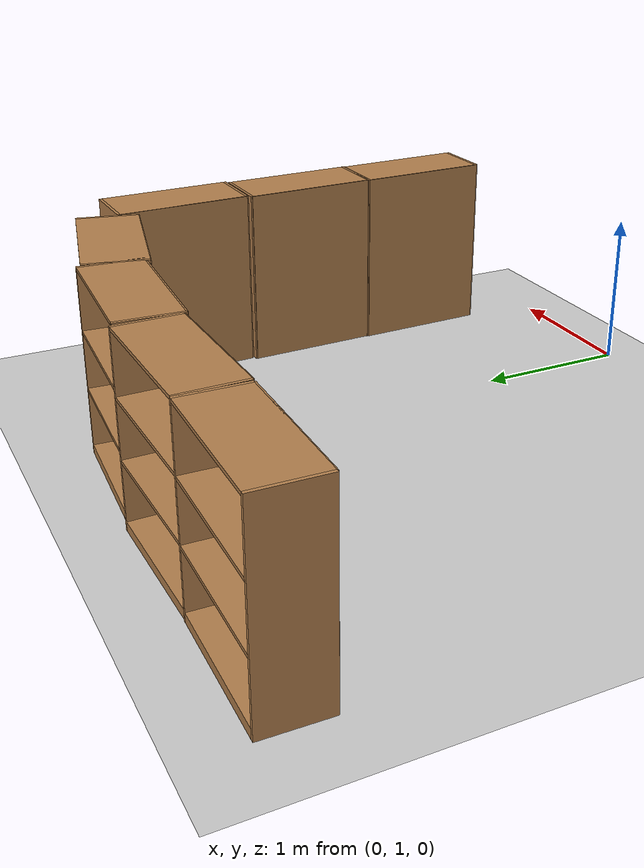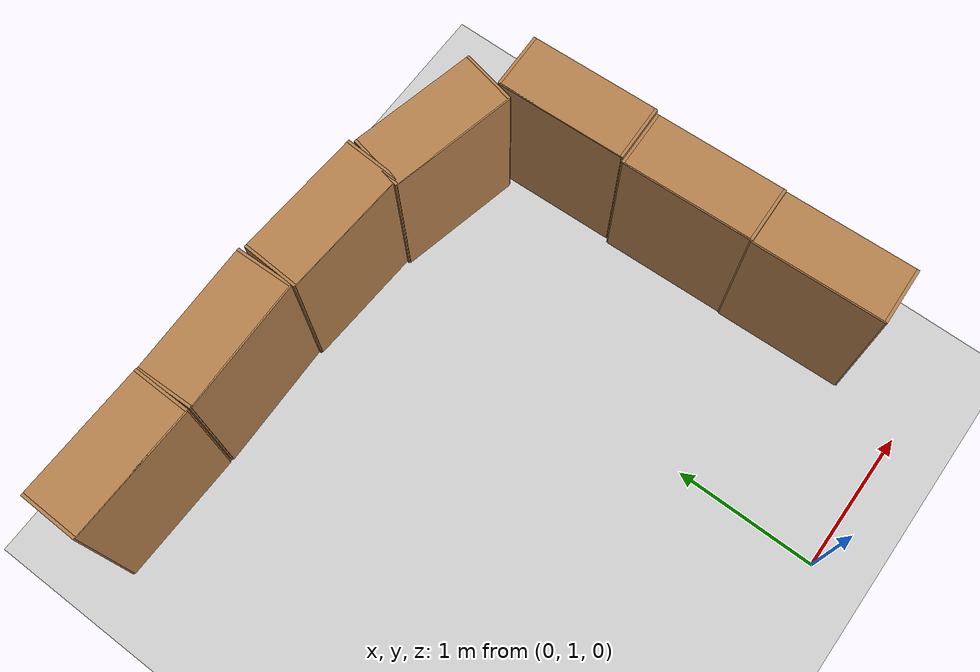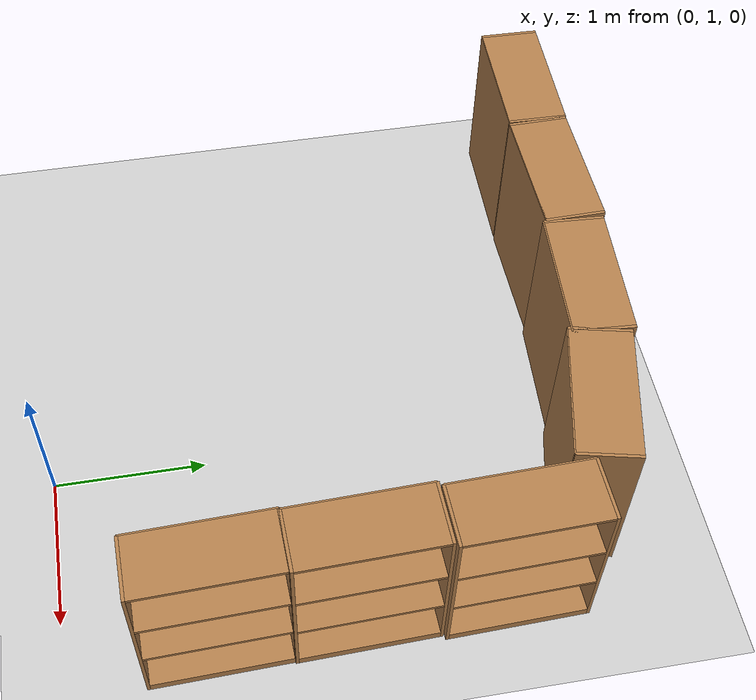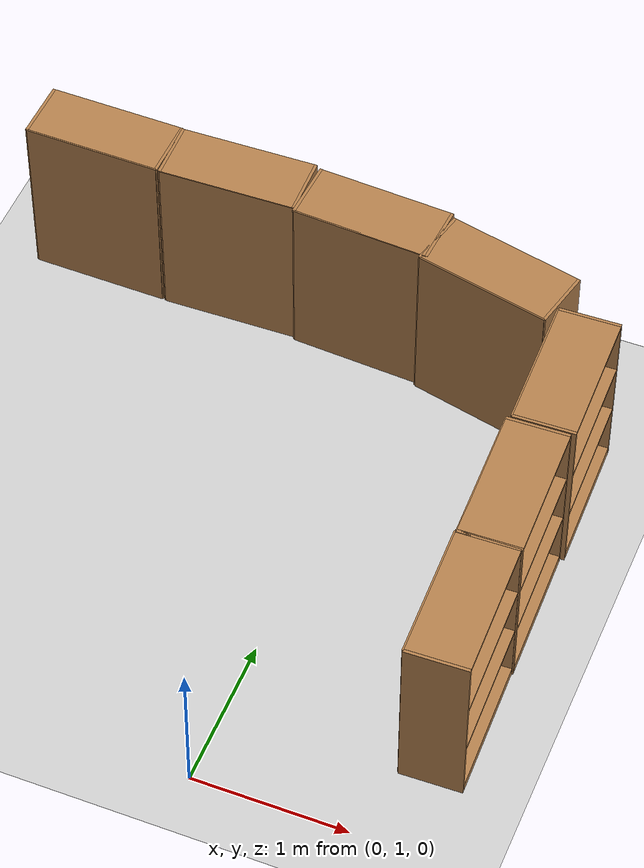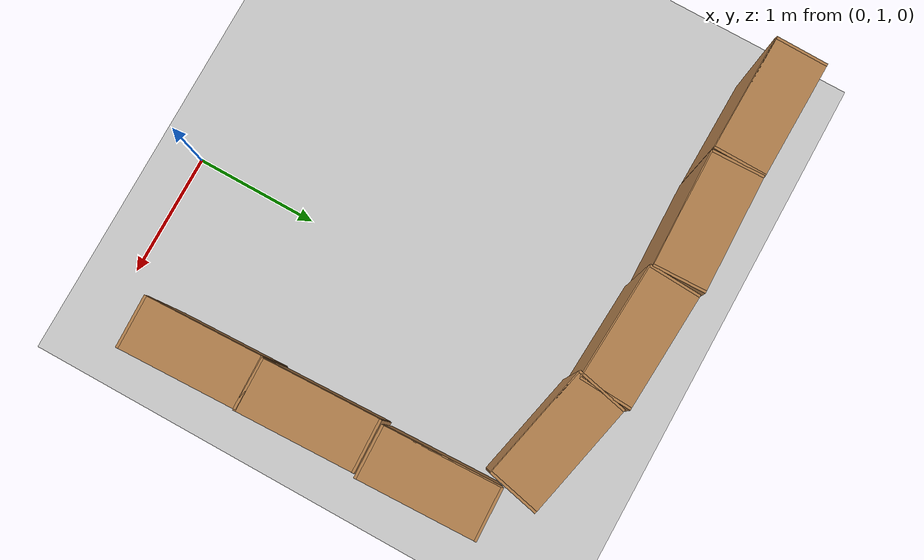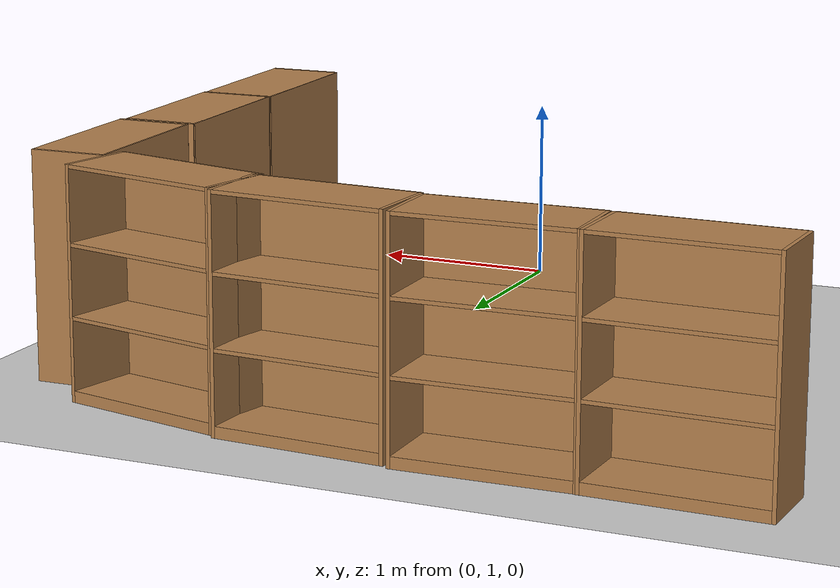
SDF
<sdf version="1.4">
 <world name="default">
  <model name="ground_plane">
   <static>1</static>
   <link name="link">
    <collision name="collision">
     <geometry><plane><normal>0 0 1</normal><size>100 100</size></plane></geometry>
     <surface><friction><ode><mu>100</mu><mu2>50</mu2></ode></friction></surface>
    </collision>
    <visual name="visual">
     <cast_shadows>0</cast_shadows>
     <geometry><plane><normal>0 0 1</normal><size>100 100</size></plane></geometry>
     <material>
      <script><uri>file://media/materials/scripts/gazebo.material</uri><name>Gazebo/Grey</name></script>
     </material>
    </visual>
    <velocity_decay><linear>0</linear><angular>0</angular></velocity_decay>
   </link>
  </model>
  <model name="bookshelf_6">
   <static>1</static>
   <link name="link">
    <inertial><mass>1</mass></inertial>
    <collision name="back">
     <pose>0 0.005 0.6 0 -0 0</pose>
     <geometry><box><size>0.9 0.01 1.2</size></box></geometry>
    </collision>
    <visual name="visual1">
     <pose>0 0.005 0.6 0 -0 0</pose>
     <geometry><box><size>0.9 0.01 1.2</size></box></geometry>
     <material>
      <script><uri>file://media/materials/scripts/gazebo.material</uri><name>Gazebo/Wood</name></script>
     </material>
    </visual>
    <collision name="left_side">
     <pose>0.45 -0.195 0.6 0 -0 0</pose>
     <geometry><box><size>0.02 0.4 1.2</size></box></geometry>
    </collision>
    <visual name="visual2">
     <pose>0.45 -0.195 0.6 0 -0 0</pose>
     <geometry><box><size>0.02 0.4 1.2</size></box></geometry>
     <material>
      <script><uri>file://media/materials/scripts/gazebo.material</uri><name>Gazebo/Wood</name></script>
     </material>
    </visual>
    <collision name="right_side">
     <pose>-0.45 -0.195 0.6 0 -0 0</pose>
     <geometry><box><size>0.02 0.4 1.2</size></box></geometry>
    </collision>
    <visual name="visual3">
     <pose>-0.45 -0.195 0.6 0 -0 0</pose>
     <geometry><box><size>0.02 0.4 1.2</size></box></geometry>
     <material>
      <script><uri>file://media/materials/scripts/gazebo.material</uri><name>Gazebo/Wood</name></script>
     </material>
    </visual>
    <collision name="bottom">
     <pose>0 -0.195 0.03 0 -0 0</pose>
     <geometry><box><size>0.88 0.4 0.06</size></box></geometry>
    </collision>
    <visual name="visual4">
     <pose>0 -0.195 0.03 0 -0 0</pose>
     <geometry><box><size>0.88 0.4 0.06</size></box></geometry>
     <material>
      <script><uri>file://media/materials/scripts/gazebo.material</uri><name>Gazebo/Wood</name></script>
     </material>
    </visual>
    <collision name="top">
     <pose>0 -0.195 1.19 0 -0 0</pose>
     <geometry><box><size>0.88 0.4 0.02</size></box></geometry>
    </collision>
    <visual name="visual5">
     <pose>0 -0.195 1.19 0 -0 0</pose>
     <geometry><box><size>0.88 0.4 0.02</size></box></geometry>
     <material>
      <script><uri>file://media/materials/scripts/gazebo.material</uri><name>Gazebo/Wood</name></script>
     </material>
    </visual>
    <collision name="low_shelf">
     <pose>0 -0.195 0.43 0 -0 0</pose>
     <geometry><box><size>0.88 0.4 0.02</size></box></geometry>
    </collision>
    <visual name="visual6">
     <pose>0 -0.195 0.43 0 -0 0</pose>
     <geometry><box><size>0.88 0.4 0.02</size></box></geometry>
     <material>
      <script><uri>file://media/materials/scripts/gazebo.material</uri><name>Gazebo/Wood</name></script>
     </material>
    </visual>
    <collision name="high_shelf">
     <pose>0 -0.195 0.8 0 -0 0</pose>
     <geometry><box><size>0.88 0.4 0.02</size></box></geometry>
    </collision>
    <visual name="visual7">
     <pose>0 -0.195 0.8 0 -0 0</pose>
     <geometry><box><size>0.88 0.4 0.02</size></box></geometry>
     <material>
      <script><uri>file://media/materials/scripts/gazebo.material</uri><name>Gazebo/Wood</name></script>
     </material>
    </visual>
    <velocity_decay><linear>0</linear><angular>0</angular></velocity_decay>
   </link>
   <pose>-2.11756 4.40334 0 0 -0 3.12318</pose>
  </model>
  <model name="bookshelf_7">
   <static>1</static>
   <link name="link">
    <inertial><mass>1</mass></inertial>
    <collision name="back">
     <pose>0 0.005 0.6 0 -0 0</pose>
     <geometry><box><size>0.9 0.01 1.2</size></box></geometry>
    </collision>
    <visual name="visual1">
     <pose>0 0.005 0.6 0 -0 0</pose>
     <geometry><box><size>0.9 0.01 1.2</size></box></geometry>
     <material>
      <script><uri>file://media/materials/scripts/gazebo.material</uri><name>Gazebo/Wood</name></script>
     </material>
    </visual>
    <collision name="left_side">
     <pose>0.45 -0.195 0.6 0 -0 0</pose>
     <geometry><box><size>0.02 0.4 1.2</size></box></geometry>
    </collision>
    <visual name="visual2">
     <pose>0.45 -0.195 0.6 0 -0 0</pose>
     <geometry><box><size>0.02 0.4 1.2</size></box></geometry>
     <material>
      <script><uri>file://media/materials/scripts/gazebo.material</uri><name>Gazebo/Wood</name></script>
     </material>
    </visual>
    <collision name="right_side">
     <pose>-0.45 -0.195 0.6 0 -0 0</pose>
     <geometry><box><size>0.02 0.4 1.2</size></box></geometry>
    </collision>
    <visual name="visual3">
     <pose>-0.45 -0.195 0.6 0 -0 0</pose>
     <geometry><box><size>0.02 0.4 1.2</size></box></geometry>
     <material>
      <script><uri>file://media/materials/scripts/gazebo.material</uri><name>Gazebo/Wood</name></script>
     </material>
    </visual>
    <collision name="bottom">
     <pose>0 -0.195 0.03 0 -0 0</pose>
     <geometry><box><size>0.88 0.4 0.06</size></box></geometry>
    </collision>
    <visual name="visual4">
     <pose>0 -0.195 0.03 0 -0 0</pose>
     <geometry><box><size>0.88 0.4 0.06</size></box></geometry>
     <material>
      <script><uri>file://media/materials/scripts/gazebo.material</uri><name>Gazebo/Wood</name></script>
     </material>
    </visual>
    <collision name="top">
     <pose>0 -0.195 1.19 0 -0 0</pose>
     <geometry><box><size>0.88 0.4 0.02</size></box></geometry>
    </collision>
    <visual name="visual5">
     <pose>0 -0.195 1.19 0 -0 0</pose>
     <geometry><box><size>0.88 0.4 0.02</size></box></geometry>
     <material>
      <script><uri>file://media/materials/scripts/gazebo.material</uri><name>Gazebo/Wood</name></script>
     </material>
    </visual>
    <collision name="low_shelf">
     <pose>0 -0.195 0.43 0 -0 0</pose>
     <geometry><box><size>0.88 0.4 0.02</size></box></geometry>
    </collision>
    <visual name="visual6">
     <pose>0 -0.195 0.43 0 -0 0</pose>
     <geometry><box><size>0.88 0.4 0.02</size></box></geometry>
     <material>
      <script><uri>file://media/materials/scripts/gazebo.material</uri><name>Gazebo/Wood</name></script>
     </material>
    </visual>
    <collision name="high_shelf">
     <pose>0 -0.195 0.8 0 -0 0</pose>
     <geometry><box><size>0.88 0.4 0.02</size></box></geometry>
    </collision>
    <visual name="visual7">
     <pose>0 -0.195 0.8 0 -0 0</pose>
     <geometry><box><size>0.88 0.4 0.02</size></box></geometry>
     <material>
      <script><uri>file://media/materials/scripts/gazebo.material</uri><name>Gazebo/Wood</name></script>
     </material>
    </visual>
    <velocity_decay><linear>0</linear><angular>0</angular></velocity_decay>
   </link>
   <pose>-1.19087 4.40083 0 0 0 -3.12</pose>
  </model>
  <model name="bookshelf_8">
   <static>1</static>
   <link name="link">
    <inertial><mass>1</mass></inertial>
    <collision name="back">
     <pose>0 0.005 0.6 0 -0 0</pose>
     <geometry><box><size>0.9 0.01 1.2</size></box></geometry>
    </collision>
    <visual name="visual1">
     <pose>0 0.005 0.6 0 -0 0</pose>
     <geometry><box><size>0.9 0.01 1.2</size></box></geometry>
     <material>
      <script><uri>file://media/materials/scripts/gazebo.material</uri><name>Gazebo/Wood</name></script>
     </material>
    </visual>
    <collision name="left_side">
     <pose>0.45 -0.195 0.6 0 -0 0</pose>
     <geometry><box><size>0.02 0.4 1.2</size></box></geometry>
    </collision>
    <visual name="visual2">
     <pose>0.45 -0.195 0.6 0 -0 0</pose>
     <geometry><box><size>0.02 0.4 1.2</size></box></geometry>
     <material>
      <script><uri>file://media/materials/scripts/gazebo.material</uri><name>Gazebo/Wood</name></script>
     </material>
    </visual>
    <collision name="right_side">
     <pose>-0.45 -0.195 0.6 0 -0 0</pose>
     <geometry><box><size>0.02 0.4 1.2</size></box></geometry>
    </collision>
    <visual name="visual3">
     <pose>-0.45 -0.195 0.6 0 -0 0</pose>
     <geometry><box><size>0.02 0.4 1.2</size></box></geometry>
     <material>
      <script><uri>file://media/materials/scripts/gazebo.material</uri><name>Gazebo/Wood</name></script>
     </material>
    </visual>
    <collision name="bottom">
     <pose>0 -0.195 0.03 0 -0 0</pose>
     <geometry><box><size>0.88 0.4 0.06</size></box></geometry>
    </collision>
    <visual name="visual4">
     <pose>0 -0.195 0.03 0 -0 0</pose>
     <geometry><box><size>0.88 0.4 0.06</size></box></geometry>
     <material>
      <script><uri>file://media/materials/scripts/gazebo.material</uri><name>Gazebo/Wood</name></script>
     </material>
    </visual>
    <collision name="top">
     <pose>0 -0.195 1.19 0 -0 0</pose>
     <geometry><box><size>0.88 0.4 0.02</size></box></geometry>
    </collision>
    <visual name="visual5">
     <pose>0 -0.195 1.19 0 -0 0</pose>
     <geometry><box><size>0.88 0.4 0.02</size></box></geometry>
     <material>
      <script><uri>file://media/materials/scripts/gazebo.material</uri><name>Gazebo/Wood</name></script>
     </material>
    </visual>
    <collision name="low_shelf">
     <pose>0 -0.195 0.43 0 -0 0</pose>
     <geometry><box><size>0.88 0.4 0.02</size></box></geometry>
    </collision>
    <visual name="visual6">
     <pose>0 -0.195 0.43 0 -0 0</pose>
     <geometry><box><size>0.88 0.4 0.02</size></box></geometry>
     <material>
      <script><uri>file://media/materials/scripts/gazebo.material</uri><name>Gazebo/Wood</name></script>
     </material>
    </visual>
    <collision name="high_shelf">
     <pose>0 -0.195 0.8 0 -0 0</pose>
     <geometry><box><size>0.88 0.4 0.02</size></box></geometry>
    </collision>
    <visual name="visual7">
     <pose>0 -0.195 0.8 0 -0 0</pose>
     <geometry><box><size>0.88 0.4 0.02</size></box></geometry>
     <material>
      <script><uri>file://media/materials/scripts/gazebo.material</uri><name>Gazebo/Wood</name></script>
     </material>
    </visual>
    <velocity_decay><linear>0</linear><angular>0</angular></velocity_decay>
   </link>
   <pose>-0.279273 4.36332 0 0 -0 3.08318</pose>
  </model>
  <model name="bookshelf_11">
   <static>1</static>
   <link name="link">
    <inertial><mass>1</mass></inertial>
    <collision name="back">
     <pose>0 0.005 0.6 0 -0 0</pose>
     <geometry><box><size>0.9 0.01 1.2</size></box></geometry>
    </collision>
    <visual name="visual1">
     <pose>0 0.005 0.6 0 -0 0</pose>
     <geometry><box><size>0.9 0.01 1.2</size></box></geometry>
     <material>
      <script><uri>file://media/materials/scripts/gazebo.material</uri><name>Gazebo/Wood</name></script>
     </material>
    </visual>
    <collision name="left_side">
     <pose>0.45 -0.195 0.6 0 -0 0</pose>
     <geometry><box><size>0.02 0.4 1.2</size></box></geometry>
    </collision>
    <visual name="visual2">
     <pose>0.45 -0.195 0.6 0 -0 0</pose>
     <geometry><box><size>0.02 0.4 1.2</size></box></geometry>
     <material>
      <script><uri>file://media/materials/scripts/gazebo.material</uri><name>Gazebo/Wood</name></script>
     </material>
    </visual>
    <collision name="right_side">
     <pose>-0.45 -0.195 0.6 0 -0 0</pose>
     <geometry><box><size>0.02 0.4 1.2</size></box></geometry>
    </collision>
    <visual name="visual3">
     <pose>-0.45 -0.195 0.6 0 -0 0</pose>
     <geometry><box><size>0.02 0.4 1.2</size></box></geometry>
     <material>
      <script><uri>file://media/materials/scripts/gazebo.material</uri><name>Gazebo/Wood</name></script>
     </material>
    </visual>
    <collision name="bottom">
     <pose>0 -0.195 0.03 0 -0 0</pose>
     <geometry><box><size>0.88 0.4 0.06</size></box></geometry>
    </collision>
    <visual name="visual4">
     <pose>0 -0.195 0.03 0 -0 0</pose>
     <geometry><box><size>0.88 0.4 0.06</size></box></geometry>
     <material>
      <script><uri>file://media/materials/scripts/gazebo.material</uri><name>Gazebo/Wood</name></script>
     </material>
    </visual>
    <collision name="top">
     <pose>0 -0.195 1.19 0 -0 0</pose>
     <geometry><box><size>0.88 0.4 0.02</size></box></geometry>
    </collision>
    <visual name="visual5">
     <pose>0 -0.195 1.19 0 -0 0</pose>
     <geometry><box><size>0.88 0.4 0.02</size></box></geometry>
     <material>
      <script><uri>file://media/materials/scripts/gazebo.material</uri><name>Gazebo/Wood</name></script>
     </material>
    </visual>
    <collision name="low_shelf">
     <pose>0 -0.195 0.43 0 -0 0</pose>
     <geometry><box><size>0.88 0.4 0.02</size></box></geometry>
    </collision>
    <visual name="visual6">
     <pose>0 -0.195 0.43 0 -0 0</pose>
     <geometry><box><size>0.88 0.4 0.02</size></box></geometry>
     <material>
      <script><uri>file://media/materials/scripts/gazebo.material</uri><name>Gazebo/Wood</name></script>
     </material>
    </visual>
    <collision name="high_shelf">
     <pose>0 -0.195 0.8 0 -0 0</pose>
     <geometry><box><size>0.88 0.4 0.02</size></box></geometry>
    </collision>
    <visual name="visual7">
     <pose>0 -0.195 0.8 0 -0 0</pose>
     <geometry><box><size>0.88 0.4 0.02</size></box></geometry>
     <material>
      <script><uri>file://media/materials/scripts/gazebo.material</uri><name>Gazebo/Wood</name></script>
     </material>
    </visual>
    <velocity_decay><linear>0</linear><angular>0</angular></velocity_decay>
   </link>
   <pose>1.09969 1.94628 0 0 -0 1.6</pose>
  </model>
  <model name="bookshelf_12">
   <static>1</static>
   <link name="link">
    <inertial><mass>1</mass></inertial>
    <collision name="back">
     <pose>0 0.005 0.6 0 -0 0</pose>
     <geometry><box><size>0.9 0.01 1.2</size></box></geometry>
    </collision>
    <visual name="visual1">
     <pose>0 0.005 0.6 0 -0 0</pose>
     <geometry><box><size>0.9 0.01 1.2</size></box></geometry>
     <material>
      <script><uri>file://media/materials/scripts/gazebo.material</uri><name>Gazebo/Wood</name></script>
     </material>
    </visual>
    <collision name="left_side">
     <pose>0.45 -0.195 0.6 0 -0 0</pose>
     <geometry><box><size>0.02 0.4 1.2</size></box></geometry>
    </collision>
    <visual name="visual2">
     <pose>0.45 -0.195 0.6 0 -0 0</pose>
     <geometry><box><size>0.02 0.4 1.2</size></box></geometry>
     <material>
      <script><uri>file://media/materials/scripts/gazebo.material</uri><name>Gazebo/Wood</name></script>
     </material>
    </visual>
    <collision name="right_side">
     <pose>-0.45 -0.195 0.6 0 -0 0</pose>
     <geometry><box><size>0.02 0.4 1.2</size></box></geometry>
    </collision>
    <visual name="visual3">
     <pose>-0.45 -0.195 0.6 0 -0 0</pose>
     <geometry><box><size>0.02 0.4 1.2</size></box></geometry>
     <material>
      <script><uri>file://media/materials/scripts/gazebo.material</uri><name>Gazebo/Wood</name></script>
     </material>
    </visual>
    <collision name="bottom">
     <pose>0 -0.195 0.03 0 -0 0</pose>
     <geometry><box><size>0.88 0.4 0.06</size></box></geometry>
    </collision>
    <visual name="visual4">
     <pose>0 -0.195 0.03 0 -0 0</pose>
     <geometry><box><size>0.88 0.4 0.06</size></box></geometry>
     <material>
      <script><uri>file://media/materials/scripts/gazebo.material</uri><name>Gazebo/Wood</name></script>
     </material>
    </visual>
    <collision name="top">
     <pose>0 -0.195 1.19 0 -0 0</pose>
     <geometry><box><size>0.88 0.4 0.02</size></box></geometry>
    </collision>
    <visual name="visual5">
     <pose>0 -0.195 1.19 0 -0 0</pose>
     <geometry><box><size>0.88 0.4 0.02</size></box></geometry>
     <material>
      <script><uri>file://media/materials/scripts/gazebo.material</uri><name>Gazebo/Wood</name></script>
     </material>
    </visual>
    <collision name="low_shelf">
     <pose>0 -0.195 0.43 0 -0 0</pose>
     <geometry><box><size>0.88 0.4 0.02</size></box></geometry>
    </collision>
    <visual name="visual6">
     <pose>0 -0.195 0.43 0 -0 0</pose>
     <geometry><box><size>0.88 0.4 0.02</size></box></geometry>
     <material>
      <script><uri>file://media/materials/scripts/gazebo.material</uri><name>Gazebo/Wood</name></script>
     </material>
    </visual>
    <collision name="high_shelf">
     <pose>0 -0.195 0.8 0 -0 0</pose>
     <geometry><box><size>0.88 0.4 0.02</size></box></geometry>
    </collision>
    <visual name="visual7">
     <pose>0 -0.195 0.8 0 -0 0</pose>
     <geometry><box><size>0.88 0.4 0.02</size></box></geometry>
     <material>
      <script><uri>file://media/materials/scripts/gazebo.material</uri><name>Gazebo/Wood</name></script>
     </material>
    </visual>
    <velocity_decay><linear>0</linear><angular>0</angular></velocity_decay>
   </link>
   <pose>1.08164 2.84964 0 0 -0 1.6</pose>
  </model>
  <model name="bookshelf_18">
   <static>1</static>
   <link name="link">
    <inertial><mass>1</mass></inertial>
    <collision name="back">
     <pose>0 0.005 0.6 0 -0 0</pose>
     <geometry><box><size>0.9 0.01 1.2</size></box></geometry>
    </collision>
    <visual name="visual1">
     <pose>0 0.005 0.6 0 -0 0</pose>
     <geometry><box><size>0.9 0.01 1.2</size></box></geometry>
     <material>
      <script><uri>file://media/materials/scripts/gazebo.material</uri><name>Gazebo/Wood</name></script>
     </material>
    </visual>
    <collision name="left_side">
     <pose>0.45 -0.195 0.6 0 -0 0</pose>
     <geometry><box><size>0.02 0.4 1.2</size></box></geometry>
    </collision>
    <visual name="visual2">
     <pose>0.45 -0.195 0.6 0 -0 0</pose>
     <geometry><box><size>0.02 0.4 1.2</size></box></geometry>
     <material>
      <script><uri>file://media/materials/scripts/gazebo.material</uri><name>Gazebo/Wood</name></script>
     </material>
    </visual>
    <collision name="right_side">
     <pose>-0.45 -0.195 0.6 0 -0 0</pose>
     <geometry><box><size>0.02 0.4 1.2</size></box></geometry>
    </collision>
    <visual name="visual3">
     <pose>-0.45 -0.195 0.6 0 -0 0</pose>
     <geometry><box><size>0.02 0.4 1.2</size></box></geometry>
     <material>
      <script><uri>file://media/materials/scripts/gazebo.material</uri><name>Gazebo/Wood</name></script>
     </material>
    </visual>
    <collision name="bottom">
     <pose>0 -0.195 0.03 0 -0 0</pose>
     <geometry><box><size>0.88 0.4 0.06</size></box></geometry>
    </collision>
    <visual name="visual4">
     <pose>0 -0.195 0.03 0 -0 0</pose>
     <geometry><box><size>0.88 0.4 0.06</size></box></geometry>
     <material>
      <script><uri>file://media/materials/scripts/gazebo.material</uri><name>Gazebo/Wood</name></script>
     </material>
    </visual>
    <collision name="top">
     <pose>0 -0.195 1.19 0 -0 0</pose>
     <geometry><box><size>0.88 0.4 0.02</size></box></geometry>
    </collision>
    <visual name="visual5">
     <pose>0 -0.195 1.19 0 -0 0</pose>
     <geometry><box><size>0.88 0.4 0.02</size></box></geometry>
     <material>
      <script><uri>file://media/materials/scripts/gazebo.material</uri><name>Gazebo/Wood</name></script>
     </material>
    </visual>
    <collision name="low_shelf">
     <pose>0 -0.195 0.43 0 -0 0</pose>
     <geometry><box><size>0.88 0.4 0.02</size></box></geometry>
    </collision>
    <visual name="visual6">
     <pose>0 -0.195 0.43 0 -0 0</pose>
     <geometry><box><size>0.88 0.4 0.02</size></box></geometry>
     <material>
      <script><uri>file://media/materials/scripts/gazebo.material</uri><name>Gazebo/Wood</name></script>
     </material>
    </visual>
    <collision name="high_shelf">
     <pose>0 -0.195 0.8 0 -0 0</pose>
     <geometry><box><size>0.88 0.4 0.02</size></box></geometry>
    </collision>
    <visual name="visual7">
     <pose>0 -0.195 0.8 0 -0 0</pose>
     <geometry><box><size>0.88 0.4 0.02</size></box></geometry>
     <material>
      <script><uri>file://media/materials/scripts/gazebo.material</uri><name>Gazebo/Wood</name></script>
     </material>
    </visual>
    <velocity_decay><linear>0</linear><angular>0</angular></velocity_decay>
   </link>
   <pose>0.575815 4.2148 0 0 -0 2.92</pose>
  </model>
  <model name="bookshelf_20">
   <static>1</static>
   <link name="link">
    <inertial><mass>1</mass></inertial>
    <collision name="back">
     <pose>0 0.005 0.6 0 -0 0</pose>
     <geometry><box><size>0.9 0.01 1.2</size></box></geometry>
    </collision>
    <visual name="visual1">
     <pose>0 0.005 0.6 0 -0 0</pose>
     <geometry><box><size>0.9 0.01 1.2</size></box></geometry>
     <material>
      <script><uri>file://media/materials/scripts/gazebo.material</uri><name>Gazebo/Wood</name></script>
     </material>
    </visual>
    <collision name="left_side">
     <pose>0.45 -0.195 0.6 0 -0 0</pose>
     <geometry><box><size>0.02 0.4 1.2</size></box></geometry>
    </collision>
    <visual name="visual2">
     <pose>0.45 -0.195 0.6 0 -0 0</pose>
     <geometry><box><size>0.02 0.4 1.2</size></box></geometry>
     <material>
      <script><uri>file://media/materials/scripts/gazebo.material</uri><name>Gazebo/Wood</name></script>
     </material>
    </visual>
    <collision name="right_side">
     <pose>-0.45 -0.195 0.6 0 -0 0</pose>
     <geometry><box><size>0.02 0.4 1.2</size></box></geometry>
    </collision>
    <visual name="visual3">
     <pose>-0.45 -0.195 0.6 0 -0 0</pose>
     <geometry><box><size>0.02 0.4 1.2</size></box></geometry>
     <material>
      <script><uri>file://media/materials/scripts/gazebo.material</uri><name>Gazebo/Wood</name></script>
     </material>
    </visual>
    <collision name="bottom">
     <pose>0 -0.195 0.03 0 -0 0</pose>
     <geometry><box><size>0.88 0.4 0.06</size></box></geometry>
    </collision>
    <visual name="visual4">
     <pose>0 -0.195 0.03 0 -0 0</pose>
     <geometry><box><size>0.88 0.4 0.06</size></box></geometry>
     <material>
      <script><uri>file://media/materials/scripts/gazebo.material</uri><name>Gazebo/Wood</name></script>
     </material>
    </visual>
    <collision name="top">
     <pose>0 -0.195 1.19 0 -0 0</pose>
     <geometry><box><size>0.88 0.4 0.02</size></box></geometry>
    </collision>
    <visual name="visual5">
     <pose>0 -0.195 1.19 0 -0 0</pose>
     <geometry><box><size>0.88 0.4 0.02</size></box></geometry>
     <material>
      <script><uri>file://media/materials/scripts/gazebo.material</uri><name>Gazebo/Wood</name></script>
     </material>
    </visual>
    <collision name="low_shelf">
     <pose>0 -0.195 0.43 0 -0 0</pose>
     <geometry><box><size>0.88 0.4 0.02</size></box></geometry>
    </collision>
    <visual name="visual6">
     <pose>0 -0.195 0.43 0 -0 0</pose>
     <geometry><box><size>0.88 0.4 0.02</size></box></geometry>
     <material>
      <script><uri>file://media/materials/scripts/gazebo.material</uri><name>Gazebo/Wood</name></script>
     </material>
    </visual>
    <collision name="high_shelf">
     <pose>0 -0.195 0.8 0 -0 0</pose>
     <geometry><box><size>0.88 0.4 0.02</size></box></geometry>
    </collision>
    <visual name="visual7">
     <pose>0 -0.195 0.8 0 -0 0</pose>
     <geometry><box><size>0.88 0.4 0.02</size></box></geometry>
     <material>
      <script><uri>file://media/materials/scripts/gazebo.material</uri><name>Gazebo/Wood</name></script>
     </material>
    </visual>
    <velocity_decay><linear>0</linear><angular>0</angular></velocity_decay>
   </link>
   <pose>1.08027 3.77769 0 0 -0 1.6</pose>
  </model>
 </world>
</sdf>
